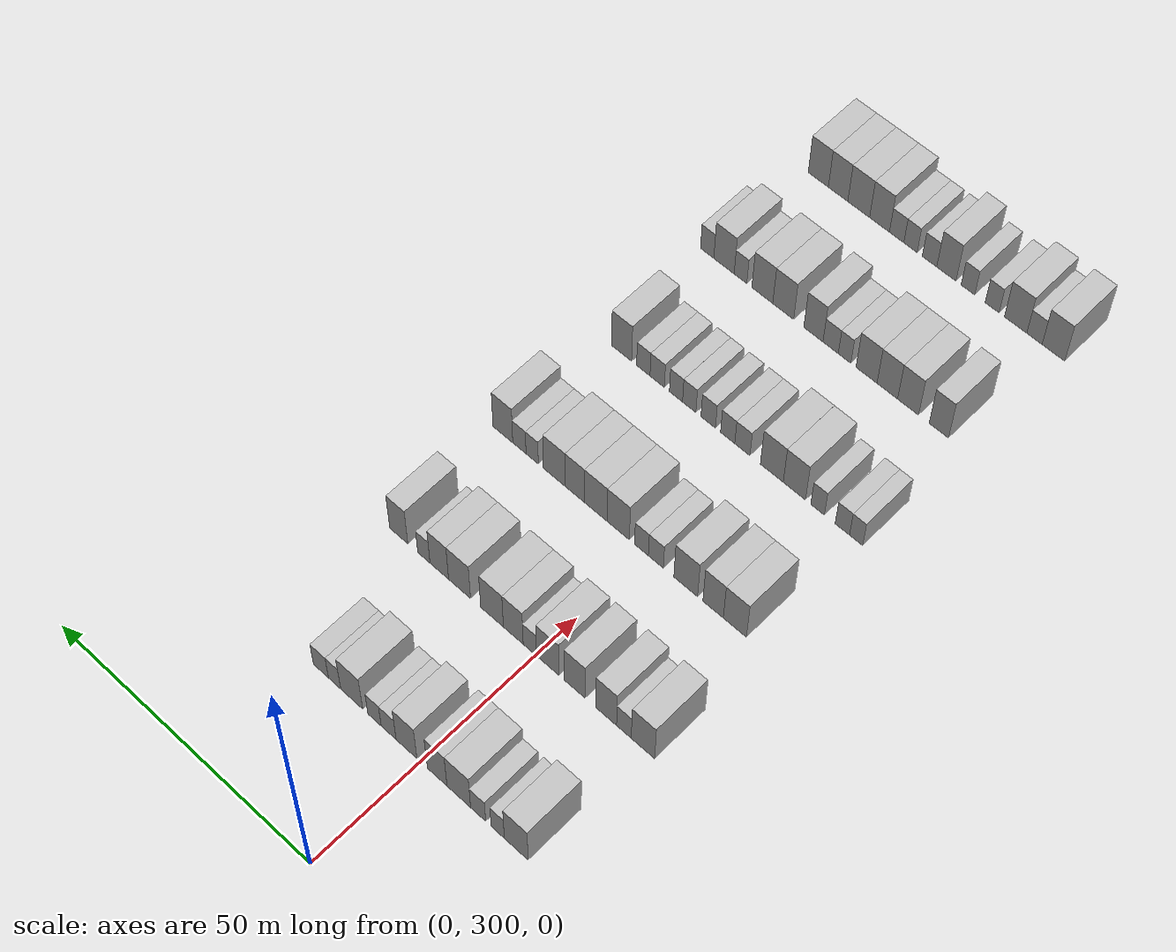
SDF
<sdf version="1.6">
 <world name="default">
  <model name="building_175">
   <static>1</static>
   <pose>25.0000 282.0824 0 0.000000 0.000000 0.000000</pose>
   <link name="link">
    <pose>0 0 4.50 0 0 0</pose>
    <collision name="collision"><geometry><box><size>10.0000 4.3826 9.0000</size></box></geometry></collision>
    <visual name="visual">
     <cast_shadows>0</cast_shadows>
     <geometry><box><size>10.0000 4.3826 9.0000</size></box></geometry>
     <material>
      <script>
       <uri>model://HANNAS_wall/materials/scripts</uri>
       <uri>model://HANNAS_wall/materials/textures</uri>
       <name>vrc/HANNAS_wall</name>
      </script>
     </material>
    </visual>
   </link>
  </model>
  <model name="building_176">
   <static>1</static>
   <pose>25.0000 285.5023 0 0.000000 0.000000 0.000000</pose>
   <link name="link">
    <pose>0 0 3.00 0 0 0</pose>
    <collision name="collision"><geometry><box><size>10.0000 2.4571 6.0000</size></box></geometry></collision>
    <visual name="visual">
     <cast_shadows>0</cast_shadows>
     <geometry><box><size>10.0000 2.4571 6.0000</size></box></geometry>
     <material>
      <script>
       <uri>model://HANNAS_wall/materials/scripts</uri>
       <uri>model://HANNAS_wall/materials/textures</uri>
       <name>vrc/HANNAS_wall</name>
      </script>
     </material>
    </visual>
   </link>
  </model>
  <model name="building_177">
   <static>1</static>
   <pose>25.0000 289.1351 0 0.000000 0.000000 0.000000</pose>
   <link name="link">
    <pose>0 0 3.00 0 0 0</pose>
    <collision name="collision"><geometry><box><size>10.0000 2.8085 6.0000</size></box></geometry></collision>
    <visual name="visual">
     <cast_shadows>0</cast_shadows>
     <geometry><box><size>10.0000 2.8085 6.0000</size></box></geometry>
     <material>
      <script>
       <uri>model://HANNAS_wall/materials/scripts</uri>
       <uri>model://HANNAS_wall/materials/textures</uri>
       <name>vrc/HANNAS_wall</name>
      </script>
     </material>
    </visual>
   </link>
  </model>
  <model name="building_178">
   <static>1</static>
   <pose>25.0000 292.7621 0 0.000000 0.000000 0.000000</pose>
   <link name="link">
    <pose>0 0 4.50 0 0 0</pose>
    <collision name="collision"><geometry><box><size>10.0000 4.4456 9.0000</size></box></geometry></collision>
    <visual name="visual">
     <cast_shadows>0</cast_shadows>
     <geometry><box><size>10.0000 4.4456 9.0000</size></box></geometry>
     <material>
      <script>
       <uri>model://HANNAS_wall/materials/scripts</uri>
       <uri>model://HANNAS_wall/materials/textures</uri>
       <name>vrc/HANNAS_wall</name>
      </script>
     </material>
    </visual>
   </link>
  </model>
  <model name="building_179">
   <static>1</static>
   <pose>25.0000 296.8432 0 0.000000 0.000000 0.000000</pose>
   <link name="link">
    <pose>0 0 4.50 0 0 0</pose>
    <collision name="collision"><geometry><box><size>10.0000 3.7166 9.0000</size></box></geometry></collision>
    <visual name="visual">
     <cast_shadows>0</cast_shadows>
     <geometry><box><size>10.0000 3.7166 9.0000</size></box></geometry>
     <material>
      <script>
       <uri>model://HANNAS_wall/materials/scripts</uri>
       <uri>model://HANNAS_wall/materials/textures</uri>
       <name>vrc/HANNAS_wall</name>
      </script>
     </material>
    </visual>
   </link>
  </model>
  <model name="building_180">
   <static>1</static>
   <pose>25.0000 302.7048 0 0.000000 0.000000 0.000000</pose>
   <link name="link">
    <pose>0 0 4.50 0 0 0</pose>
    <collision name="collision"><geometry><box><size>10.0000 4.0065 9.0000</size></box></geometry></collision>
    <visual name="visual">
     <cast_shadows>0</cast_shadows>
     <geometry><box><size>10.0000 4.0065 9.0000</size></box></geometry>
     <material>
      <script>
       <uri>model://HANNAS_wall/materials/scripts</uri>
       <uri>model://HANNAS_wall/materials/textures</uri>
       <name>vrc/HANNAS_wall</name>
      </script>
     </material>
    </visual>
   </link>
  </model>
  <model name="building_181">
   <static>1</static>
   <pose>25.0000 306.1415 0 0.000000 0.000000 0.000000</pose>
   <link name="link">
    <pose>0 0 3.00 0 0 0</pose>
    <collision name="collision"><geometry><box><size>10.0000 2.8670 6.0000</size></box></geometry></collision>
    <visual name="visual">
     <cast_shadows>0</cast_shadows>
     <geometry><box><size>10.0000 2.8670 6.0000</size></box></geometry>
     <material>
      <script>
       <uri>model://HANNAS_wall/materials/scripts</uri>
       <uri>model://HANNAS_wall/materials/textures</uri>
       <name>vrc/HANNAS_wall</name>
      </script>
     </material>
    </visual>
   </link>
  </model>
  <model name="building_182">
   <static>1</static>
   <pose>25.0000 308.8755 0 0.000000 0.000000 0.000000</pose>
   <link name="link">
    <pose>0 0 3.00 0 0 0</pose>
    <collision name="collision"><geometry><box><size>10.0000 2.6011 6.0000</size></box></geometry></collision>
    <visual name="visual">
     <cast_shadows>0</cast_shadows>
     <geometry><box><size>10.0000 2.6011 6.0000</size></box></geometry>
     <material>
      <script>
       <uri>model://HANNAS_wall/materials/scripts</uri>
       <uri>model://HANNAS_wall/materials/textures</uri>
       <name>vrc/HANNAS_wall</name>
      </script>
     </material>
    </visual>
   </link>
  </model>
  <model name="building_183">
   <static>1</static>
   <pose>25.0000 313.3384 0 0.000000 0.000000 0.000000</pose>
   <link name="link">
    <pose>0 0 4.50 0 0 0</pose>
    <collision name="collision"><geometry><box><size>10.0000 4.3247 9.0000</size></box></geometry></collision>
    <visual name="visual">
     <cast_shadows>0</cast_shadows>
     <geometry><box><size>10.0000 4.3247 9.0000</size></box></geometry>
     <material>
      <script>
       <uri>model://HANNAS_wall/materials/scripts</uri>
       <uri>model://HANNAS_wall/materials/textures</uri>
       <name>vrc/HANNAS_wall</name>
      </script>
     </material>
    </visual>
   </link>
  </model>
  <model name="building_184">
   <static>1</static>
   <pose>25.0000 316.7145 0 0.000000 0.000000 0.000000</pose>
   <link name="link">
    <pose>0 0 3.00 0 0 0</pose>
    <collision name="collision"><geometry><box><size>10.0000 2.4275 6.0000</size></box></geometry></collision>
    <visual name="visual">
     <cast_shadows>0</cast_shadows>
     <geometry><box><size>10.0000 2.4275 6.0000</size></box></geometry>
     <material>
      <script>
       <uri>model://HANNAS_wall/materials/scripts</uri>
       <uri>model://HANNAS_wall/materials/textures</uri>
       <name>vrc/HANNAS_wall</name>
      </script>
     </material>
    </visual>
   </link>
  </model>
  <model name="building_185">
   <static>1</static>
   <pose>25.0000 319.4148 0 0.000000 0.000000 0.000000</pose>
   <link name="link">
    <pose>0 0 3.00 0 0 0</pose>
    <collision name="collision"><geometry><box><size>10.0000 2.9731 6.0000</size></box></geometry></collision>
    <visual name="visual">
     <cast_shadows>0</cast_shadows>
     <geometry><box><size>10.0000 2.9731 6.0000</size></box></geometry>
     <material>
      <script>
       <uri>model://HANNAS_wall/materials/scripts</uri>
       <uri>model://HANNAS_wall/materials/textures</uri>
       <name>vrc/HANNAS_wall</name>
      </script>
     </material>
    </visual>
   </link>
  </model>
  <model name="building_370">
   <static>1</static>
   <pose>47.0000 280.0027 0 0.000000 0.000000 0.000000</pose>
   <link name="link">
    <pose>0 0 4.50 0 0 0</pose>
    <collision name="collision"><geometry><box><size>10.0000 4.3043 9.0000</size></box></geometry></collision>
    <visual name="visual">
     <cast_shadows>0</cast_shadows>
     <geometry><box><size>10.0000 4.3043 9.0000</size></box></geometry>
     <material>
      <script>
       <uri>model://HANNAS_wall/materials/scripts</uri>
       <uri>model://HANNAS_wall/materials/textures</uri>
       <name>vrc/HANNAS_wall</name>
      </script>
     </material>
    </visual>
   </link>
  </model>
  <model name="building_371">
   <static>1</static>
   <pose>47.0000 283.5054 0 0.000000 0.000000 0.000000</pose>
   <link name="link">
    <pose>0 0 3.00 0 0 0</pose>
    <collision name="collision"><geometry><box><size>10.0000 2.7009 6.0000</size></box></geometry></collision>
    <visual name="visual">
     <cast_shadows>0</cast_shadows>
     <geometry><box><size>10.0000 2.7009 6.0000</size></box></geometry>
     <material>
      <script>
       <uri>model://HANNAS_wall/materials/scripts</uri>
       <uri>model://HANNAS_wall/materials/textures</uri>
       <name>vrc/HANNAS_wall</name>
      </script>
     </material>
    </visual>
   </link>
  </model>
  <model name="building_372">
   <static>1</static>
   <pose>47.0000 286.7850 0 0.000000 0.000000 0.000000</pose>
   <link name="link">
    <pose>0 0 4.50 0 0 0</pose>
    <collision name="collision"><geometry><box><size>10.0000 3.8583 9.0000</size></box></geometry></collision>
    <visual name="visual">
     <cast_shadows>0</cast_shadows>
     <geometry><box><size>10.0000 3.8583 9.0000</size></box></geometry>
     <material>
      <script>
       <uri>model://HANNAS_wall/materials/scripts</uri>
       <uri>model://HANNAS_wall/materials/textures</uri>
       <name>vrc/HANNAS_wall</name>
      </script>
     </material>
    </visual>
   </link>
  </model>
  <model name="building_373">
   <static>1</static>
   <pose>47.0000 292.6842 0 0.000000 0.000000 0.000000</pose>
   <link name="link">
    <pose>0 0 4.50 0 0 0</pose>
    <collision name="collision"><geometry><box><size>10.0000 3.9401 9.0000</size></box></geometry></collision>
    <visual name="visual">
     <cast_shadows>0</cast_shadows>
     <geometry><box><size>10.0000 3.9401 9.0000</size></box></geometry>
     <material>
      <script>
       <uri>model://HANNAS_wall/materials/scripts</uri>
       <uri>model://HANNAS_wall/materials/textures</uri>
       <name>vrc/HANNAS_wall</name>
      </script>
     </material>
    </visual>
   </link>
  </model>
  <model name="building_374">
   <static>1</static>
   <pose>47.0000 297.7859 0 0.000000 0.000000 0.000000</pose>
   <link name="link">
    <pose>0 0 4.50 0 0 0</pose>
    <collision name="collision"><geometry><box><size>10.0000 4.2632 9.0000</size></box></geometry></collision>
    <visual name="visual">
     <cast_shadows>0</cast_shadows>
     <geometry><box><size>10.0000 4.2632 9.0000</size></box></geometry>
     <material>
      <script>
       <uri>model://HANNAS_wall/materials/scripts</uri>
       <uri>model://HANNAS_wall/materials/textures</uri>
       <name>vrc/HANNAS_wall</name>
      </script>
     </material>
    </visual>
   </link>
  </model>
  <model name="building_375">
   <static>1</static>
   <pose>47.0000 301.1965 0 0.000000 0.000000 0.000000</pose>
   <link name="link">
    <pose>0 0 3.00 0 0 0</pose>
    <collision name="collision"><geometry><box><size>10.0000 2.5579 6.0000</size></box></geometry></collision>
    <visual name="visual">
     <cast_shadows>0</cast_shadows>
     <geometry><box><size>10.0000 2.5579 6.0000</size></box></geometry>
     <material>
      <script>
       <uri>model://HANNAS_wall/materials/scripts</uri>
       <uri>model://HANNAS_wall/materials/textures</uri>
       <name>vrc/HANNAS_wall</name>
      </script>
     </material>
    </visual>
   </link>
  </model>
  <model name="building_376">
   <static>1</static>
   <pose>47.0000 304.3862 0 0.000000 0.000000 0.000000</pose>
   <link name="link">
    <pose>0 0 4.50 0 0 0</pose>
    <collision name="collision"><geometry><box><size>10.0000 3.8214 9.0000</size></box></geometry></collision>
    <visual name="visual">
     <cast_shadows>0</cast_shadows>
     <geometry><box><size>10.0000 3.8214 9.0000</size></box></geometry>
     <material>
      <script>
       <uri>model://HANNAS_wall/materials/scripts</uri>
       <uri>model://HANNAS_wall/materials/textures</uri>
       <name>vrc/HANNAS_wall</name>
      </script>
     </material>
    </visual>
   </link>
  </model>
  <model name="building_377">
   <static>1</static>
   <pose>47.0000 308.5002 0 0.000000 0.000000 0.000000</pose>
   <link name="link">
    <pose>0 0 4.50 0 0 0</pose>
    <collision name="collision"><geometry><box><size>10.0000 4.4066 9.0000</size></box></geometry></collision>
    <visual name="visual">
     <cast_shadows>0</cast_shadows>
     <geometry><box><size>10.0000 4.4066 9.0000</size></box></geometry>
     <material>
      <script>
       <uri>model://HANNAS_wall/materials/scripts</uri>
       <uri>model://HANNAS_wall/materials/textures</uri>
       <name>vrc/HANNAS_wall</name>
      </script>
     </material>
    </visual>
   </link>
  </model>
  <model name="building_378">
   <static>1</static>
   <pose>47.0000 314.8669 0 0.000000 0.000000 0.000000</pose>
   <link name="link">
    <pose>0 0 4.50 0 0 0</pose>
    <collision name="collision"><geometry><box><size>10.0000 4.3269 9.0000</size></box></geometry></collision>
    <visual name="visual">
     <cast_shadows>0</cast_shadows>
     <geometry><box><size>10.0000 4.3269 9.0000</size></box></geometry>
     <material>
      <script>
       <uri>model://HANNAS_wall/materials/scripts</uri>
       <uri>model://HANNAS_wall/materials/textures</uri>
       <name>vrc/HANNAS_wall</name>
      </script>
     </material>
    </visual>
   </link>
  </model>
  <model name="building_379">
   <static>1</static>
   <pose>47.0000 318.8707 0 0.000000 0.000000 0.000000</pose>
   <link name="link">
    <pose>0 0 4.50 0 0 0</pose>
    <collision name="collision"><geometry><box><size>10.0000 3.6808 9.0000</size></box></geometry></collision>
    <visual name="visual">
     <cast_shadows>0</cast_shadows>
     <geometry><box><size>10.0000 3.6808 9.0000</size></box></geometry>
     <material>
      <script>
       <uri>model://HANNAS_wall/materials/scripts</uri>
       <uri>model://HANNAS_wall/materials/textures</uri>
       <name>vrc/HANNAS_wall</name>
      </script>
     </material>
    </visual>
   </link>
  </model>
  <model name="building_380">
   <static>1</static>
   <pose>47.0000 321.9353 0 0.000000 0.000000 0.000000</pose>
   <link name="link">
    <pose>0 0 3.00 0 0 0</pose>
    <collision name="collision"><geometry><box><size>10.0000 2.4484 6.0000</size></box></geometry></collision>
    <visual name="visual">
     <cast_shadows>0</cast_shadows>
     <geometry><box><size>10.0000 2.4484 6.0000</size></box></geometry>
     <material>
      <script>
       <uri>model://HANNAS_wall/materials/scripts</uri>
       <uri>model://HANNAS_wall/materials/textures</uri>
       <name>vrc/HANNAS_wall</name>
      </script>
     </material>
    </visual>
   </link>
  </model>
  <model name="building_381">
   <static>1</static>
   <pose>47.0000 326.9849 0 0.000000 0.000000 0.000000</pose>
   <link name="link">
    <pose>0 0 4.50 0 0 0</pose>
    <collision name="collision"><geometry><box><size>10.0000 3.6507 9.0000</size></box></geometry></collision>
    <visual name="visual">
     <cast_shadows>0</cast_shadows>
     <geometry><box><size>10.0000 3.6507 9.0000</size></box></geometry>
     <material>
      <script>
       <uri>model://HANNAS_wall/materials/scripts</uri>
       <uri>model://HANNAS_wall/materials/textures</uri>
       <name>vrc/HANNAS_wall</name>
      </script>
     </material>
    </visual>
   </link>
  </model>
  <model name="building_557">
   <static>1</static>
   <pose>69.0000 283.3206 0 0.000000 0.000000 0.000000</pose>
   <link name="link">
    <pose>0 0 4.50 0 0 0</pose>
    <collision name="collision"><geometry><box><size>10.0000 4.2843 9.0000</size></box></geometry></collision>
    <visual name="visual">
     <cast_shadows>0</cast_shadows>
     <geometry><box><size>10.0000 4.2843 9.0000</size></box></geometry>
     <material>
      <script>
       <uri>model://HANNAS_wall/materials/scripts</uri>
       <uri>model://HANNAS_wall/materials/textures</uri>
       <name>vrc/HANNAS_wall</name>
      </script>
     </material>
    </visual>
   </link>
  </model>
  <model name="building_558">
   <static>1</static>
   <pose>69.0000 287.3649 0 0.000000 0.000000 0.000000</pose>
   <link name="link">
    <pose>0 0 4.50 0 0 0</pose>
    <collision name="collision"><geometry><box><size>10.0000 3.8043 9.0000</size></box></geometry></collision>
    <visual name="visual">
     <cast_shadows>0</cast_shadows>
     <geometry><box><size>10.0000 3.8043 9.0000</size></box></geometry>
     <material>
      <script>
       <uri>model://HANNAS_wall/materials/scripts</uri>
       <uri>model://HANNAS_wall/materials/textures</uri>
       <name>vrc/HANNAS_wall</name>
      </script>
     </material>
    </visual>
   </link>
  </model>
  <model name="building_559">
   <static>1</static>
   <pose>69.0000 292.5030 0 0.000000 0.000000 0.000000</pose>
   <link name="link">
    <pose>0 0 4.50 0 0 0</pose>
    <collision name="collision"><geometry><box><size>10.0000 4.4719 9.0000</size></box></geometry></collision>
    <visual name="visual">
     <cast_shadows>0</cast_shadows>
     <geometry><box><size>10.0000 4.4719 9.0000</size></box></geometry>
     <material>
      <script>
       <uri>model://HANNAS_wall/materials/scripts</uri>
       <uri>model://HANNAS_wall/materials/textures</uri>
       <name>vrc/HANNAS_wall</name>
      </script>
     </material>
    </visual>
   </link>
  </model>
  <model name="building_560">
   <static>1</static>
   <pose>69.0000 298.1664 0 0.000000 0.000000 0.000000</pose>
   <link name="link">
    <pose>0 0 3.00 0 0 0</pose>
    <collision name="collision"><geometry><box><size>10.0000 2.8551 6.0000</size></box></geometry></collision>
    <visual name="visual">
     <cast_shadows>0</cast_shadows>
     <geometry><box><size>10.0000 2.8551 6.0000</size></box></geometry>
     <material>
      <script>
       <uri>model://HANNAS_wall/materials/scripts</uri>
       <uri>model://HANNAS_wall/materials/textures</uri>
       <name>vrc/HANNAS_wall</name>
      </script>
     </material>
    </visual>
   </link>
  </model>
  <model name="building_561">
   <static>1</static>
   <pose>69.0000 300.9209 0 0.000000 0.000000 0.000000</pose>
   <link name="link">
    <pose>0 0 3.00 0 0 0</pose>
    <collision name="collision"><geometry><box><size>10.0000 2.6539 6.0000</size></box></geometry></collision>
    <visual name="visual">
     <cast_shadows>0</cast_shadows>
     <geometry><box><size>10.0000 2.6539 6.0000</size></box></geometry>
     <material>
      <script>
       <uri>model://HANNAS_wall/materials/scripts</uri>
       <uri>model://HANNAS_wall/materials/textures</uri>
       <name>vrc/HANNAS_wall</name>
      </script>
     </material>
    </visual>
   </link>
  </model>
  <model name="building_562">
   <static>1</static>
   <pose>69.0000 305.4071 0 0.000000 0.000000 0.000000</pose>
   <link name="link">
    <pose>0 0 4.50 0 0 0</pose>
    <collision name="collision"><geometry><box><size>10.0000 4.3184 9.0000</size></box></geometry></collision>
    <visual name="visual">
     <cast_shadows>0</cast_shadows>
     <geometry><box><size>10.0000 4.3184 9.0000</size></box></geometry>
     <material>
      <script>
       <uri>model://HANNAS_wall/materials/scripts</uri>
       <uri>model://HANNAS_wall/materials/textures</uri>
       <name>vrc/HANNAS_wall</name>
      </script>
     </material>
    </visual>
   </link>
  </model>
  <model name="building_563">
   <static>1</static>
   <pose>69.0000 309.7880 0 0.000000 0.000000 0.000000</pose>
   <link name="link">
    <pose>0 0 4.50 0 0 0</pose>
    <collision name="collision"><geometry><box><size>10.0000 4.4434 9.0000</size></box></geometry></collision>
    <visual name="visual">
     <cast_shadows>0</cast_shadows>
     <geometry><box><size>10.0000 4.4434 9.0000</size></box></geometry>
     <material>
      <script>
       <uri>model://HANNAS_wall/materials/scripts</uri>
       <uri>model://HANNAS_wall/materials/textures</uri>
       <name>vrc/HANNAS_wall</name>
      </script>
     </material>
    </visual>
   </link>
  </model>
  <model name="building_564">
   <static>1</static>
   <pose>69.0000 313.8903 0 0.000000 0.000000 0.000000</pose>
   <link name="link">
    <pose>0 0 4.50 0 0 0</pose>
    <collision name="collision"><geometry><box><size>10.0000 3.7614 9.0000</size></box></geometry></collision>
    <visual name="visual">
     <cast_shadows>0</cast_shadows>
     <geometry><box><size>10.0000 3.7614 9.0000</size></box></geometry>
     <material>
      <script>
       <uri>model://HANNAS_wall/materials/scripts</uri>
       <uri>model://HANNAS_wall/materials/textures</uri>
       <name>vrc/HANNAS_wall</name>
      </script>
     </material>
    </visual>
   </link>
  </model>
  <model name="building_565">
   <static>1</static>
   <pose>69.0000 317.9422 0 0.000000 0.000000 0.000000</pose>
   <link name="link">
    <pose>0 0 4.50 0 0 0</pose>
    <collision name="collision"><geometry><box><size>10.0000 4.3424 9.0000</size></box></geometry></collision>
    <visual name="visual">
     <cast_shadows>0</cast_shadows>
     <geometry><box><size>10.0000 4.3424 9.0000</size></box></geometry>
     <material>
      <script>
       <uri>model://HANNAS_wall/materials/scripts</uri>
       <uri>model://HANNAS_wall/materials/textures</uri>
       <name>vrc/HANNAS_wall</name>
      </script>
     </material>
    </visual>
   </link>
  </model>
  <model name="building_566">
   <static>1</static>
   <pose>69.0000 322.3436 0 0.000000 0.000000 0.000000</pose>
   <link name="link">
    <pose>0 0 3.00 0 0 0</pose>
    <collision name="collision"><geometry><box><size>10.0000 2.4602 6.0000</size></box></geometry></collision>
    <visual name="visual">
     <cast_shadows>0</cast_shadows>
     <geometry><box><size>10.0000 2.4602 6.0000</size></box></geometry>
     <material>
      <script>
       <uri>model://HANNAS_wall/materials/scripts</uri>
       <uri>model://HANNAS_wall/materials/textures</uri>
       <name>vrc/HANNAS_wall</name>
      </script>
     </material>
    </visual>
   </link>
  </model>
  <model name="building_567">
   <static>1</static>
   <pose>69.0000 324.9090 0 0.000000 0.000000 0.000000</pose>
   <link name="link">
    <pose>0 0 3.00 0 0 0</pose>
    <collision name="collision"><geometry><box><size>10.0000 2.6707 6.0000</size></box></geometry></collision>
    <visual name="visual">
     <cast_shadows>0</cast_shadows>
     <geometry><box><size>10.0000 2.6707 6.0000</size></box></geometry>
     <material>
      <script>
       <uri>model://HANNAS_wall/materials/scripts</uri>
       <uri>model://HANNAS_wall/materials/textures</uri>
       <name>vrc/HANNAS_wall</name>
      </script>
     </material>
    </visual>
   </link>
  </model>
  <model name="building_568">
   <static>1</static>
   <pose>69.0000 328.2450 0 0.000000 0.000000 0.000000</pose>
   <link name="link">
    <pose>0 0 4.50 0 0 0</pose>
    <collision name="collision"><geometry><box><size>10.0000 4.0013 9.0000</size></box></geometry></collision>
    <visual name="visual">
     <cast_shadows>0</cast_shadows>
     <geometry><box><size>10.0000 4.0013 9.0000</size></box></geometry>
     <material>
      <script>
       <uri>model://HANNAS_wall/materials/scripts</uri>
       <uri>model://HANNAS_wall/materials/textures</uri>
       <name>vrc/HANNAS_wall</name>
      </script>
     </material>
    </visual>
   </link>
  </model>
  <model name="building_758">
   <static>1</static>
   <pose>91.0000 280.2896 0 0.000000 0.000000 0.000000</pose>
   <link name="link">
    <pose>0 0 3.00 0 0 0</pose>
    <collision name="collision"><geometry><box><size>10.0000 2.4232 6.0000</size></box></geometry></collision>
    <visual name="visual">
     <cast_shadows>0</cast_shadows>
     <geometry><box><size>10.0000 2.4232 6.0000</size></box></geometry>
     <material>
      <script>
       <uri>model://HANNAS_wall/materials/scripts</uri>
       <uri>model://HANNAS_wall/materials/textures</uri>
       <name>vrc/HANNAS_wall</name>
      </script>
     </material>
    </visual>
   </link>
  </model>
  <model name="building_759">
   <static>1</static>
   <pose>91.0000 282.8338 0 0.000000 0.000000 0.000000</pose>
   <link name="link">
    <pose>0 0 3.00 0 0 0</pose>
    <collision name="collision"><geometry><box><size>10.0000 2.6654 6.0000</size></box></geometry></collision>
    <visual name="visual">
     <cast_shadows>0</cast_shadows>
     <geometry><box><size>10.0000 2.6654 6.0000</size></box></geometry>
     <material>
      <script>
       <uri>model://HANNAS_wall/materials/scripts</uri>
       <uri>model://HANNAS_wall/materials/textures</uri>
       <name>vrc/HANNAS_wall</name>
      </script>
     </material>
    </visual>
   </link>
  </model>
  <model name="building_760">
   <static>1</static>
   <pose>91.0000 287.4464 0 0.000000 0.000000 0.000000</pose>
   <link name="link">
    <pose>0 0 3.00 0 0 0</pose>
    <collision name="collision"><geometry><box><size>10.0000 2.5597 6.0000</size></box></geometry></collision>
    <visual name="visual">
     <cast_shadows>0</cast_shadows>
     <geometry><box><size>10.0000 2.5597 6.0000</size></box></geometry>
     <material>
      <script>
       <uri>model://HANNAS_wall/materials/scripts</uri>
       <uri>model://HANNAS_wall/materials/textures</uri>
       <name>vrc/HANNAS_wall</name>
      </script>
     </material>
    </visual>
   </link>
  </model>
  <model name="building_761">
   <static>1</static>
   <pose>91.0000 291.8269 0 0.000000 0.000000 0.000000</pose>
   <link name="link">
    <pose>0 0 4.50 0 0 0</pose>
    <collision name="collision"><geometry><box><size>10.0000 4.2015 9.0000</size></box></geometry></collision>
    <visual name="visual">
     <cast_shadows>0</cast_shadows>
     <geometry><box><size>10.0000 4.2015 9.0000</size></box></geometry>
     <material>
      <script>
       <uri>model://HANNAS_wall/materials/scripts</uri>
       <uri>model://HANNAS_wall/materials/textures</uri>
       <name>vrc/HANNAS_wall</name>
      </script>
     </material>
    </visual>
   </link>
  </model>
  <model name="building_762">
   <static>1</static>
   <pose>91.0000 296.1049 0 0.000000 0.000000 0.000000</pose>
   <link name="link">
    <pose>0 0 4.50 0 0 0</pose>
    <collision name="collision"><geometry><box><size>10.0000 4.3544 9.0000</size></box></geometry></collision>
    <visual name="visual">
     <cast_shadows>0</cast_shadows>
     <geometry><box><size>10.0000 4.3544 9.0000</size></box></geometry>
     <material>
      <script>
       <uri>model://HANNAS_wall/materials/scripts</uri>
       <uri>model://HANNAS_wall/materials/textures</uri>
       <name>vrc/HANNAS_wall</name>
      </script>
     </material>
    </visual>
   </link>
  </model>
  <model name="building_763">
   <static>1</static>
   <pose>91.0000 301.7464 0 0.000000 0.000000 0.000000</pose>
   <link name="link">
    <pose>0 0 3.00 0 0 0</pose>
    <collision name="collision"><geometry><box><size>10.0000 2.9286 6.0000</size></box></geometry></collision>
    <visual name="visual">
     <cast_shadows>0</cast_shadows>
     <geometry><box><size>10.0000 2.9286 6.0000</size></box></geometry>
     <material>
      <script>
       <uri>model://HANNAS_wall/materials/scripts</uri>
       <uri>model://HANNAS_wall/materials/textures</uri>
       <name>vrc/HANNAS_wall</name>
      </script>
     </material>
    </visual>
   </link>
  </model>
  <model name="building_764">
   <static>1</static>
   <pose>91.0000 304.5852 0 0.000000 0.000000 0.000000</pose>
   <link name="link">
    <pose>0 0 3.00 0 0 0</pose>
    <collision name="collision"><geometry><box><size>10.0000 2.7492 6.0000</size></box></geometry></collision>
    <visual name="visual">
     <cast_shadows>0</cast_shadows>
     <geometry><box><size>10.0000 2.7492 6.0000</size></box></geometry>
     <material>
      <script>
       <uri>model://HANNAS_wall/materials/scripts</uri>
       <uri>model://HANNAS_wall/materials/textures</uri>
       <name>vrc/HANNAS_wall</name>
      </script>
     </material>
    </visual>
   </link>
  </model>
  <model name="building_765">
   <static>1</static>
   <pose>91.0000 308.3703 0 0.000000 0.000000 0.000000</pose>
   <link name="link">
    <pose>0 0 3.00 0 0 0</pose>
    <collision name="collision"><geometry><box><size>10.0000 2.8209 6.0000</size></box></geometry></collision>
    <visual name="visual">
     <cast_shadows>0</cast_shadows>
     <geometry><box><size>10.0000 2.8209 6.0000</size></box></geometry>
     <material>
      <script>
       <uri>model://HANNAS_wall/materials/scripts</uri>
       <uri>model://HANNAS_wall/materials/textures</uri>
       <name>vrc/HANNAS_wall</name>
      </script>
     </material>
    </visual>
   </link>
  </model>
  <model name="building_766">
   <static>1</static>
   <pose>91.0000 312.0960 0 0.000000 0.000000 0.000000</pose>
   <link name="link">
    <pose>0 0 3.00 0 0 0</pose>
    <collision name="collision"><geometry><box><size>10.0000 2.6307 6.0000</size></box></geometry></collision>
    <visual name="visual">
     <cast_shadows>0</cast_shadows>
     <geometry><box><size>10.0000 2.6307 6.0000</size></box></geometry>
     <material>
      <script>
       <uri>model://HANNAS_wall/materials/scripts</uri>
       <uri>model://HANNAS_wall/materials/textures</uri>
       <name>vrc/HANNAS_wall</name>
      </script>
     </material>
    </visual>
   </link>
  </model>
  <model name="building_767">
   <static>1</static>
   <pose>91.0000 314.7061 0 0.000000 0.000000 0.000000</pose>
   <link name="link">
    <pose>0 0 3.00 0 0 0</pose>
    <collision name="collision"><geometry><box><size>10.0000 2.5894 6.0000</size></box></geometry></collision>
    <visual name="visual">
     <cast_shadows>0</cast_shadows>
     <geometry><box><size>10.0000 2.5894 6.0000</size></box></geometry>
     <material>
      <script>
       <uri>model://HANNAS_wall/materials/scripts</uri>
       <uri>model://HANNAS_wall/materials/textures</uri>
       <name>vrc/HANNAS_wall</name>
      </script>
     </material>
    </visual>
   </link>
  </model>
  <model name="building_768">
   <static>1</static>
   <pose>91.0000 318.4316 0 0.000000 0.000000 0.000000</pose>
   <link name="link">
    <pose>0 0 3.00 0 0 0</pose>
    <collision name="collision"><geometry><box><size>10.0000 2.8617 6.0000</size></box></geometry></collision>
    <visual name="visual">
     <cast_shadows>0</cast_shadows>
     <geometry><box><size>10.0000 2.8617 6.0000</size></box></geometry>
     <material>
      <script>
       <uri>model://HANNAS_wall/materials/scripts</uri>
       <uri>model://HANNAS_wall/materials/textures</uri>
       <name>vrc/HANNAS_wall</name>
      </script>
     </material>
    </visual>
   </link>
  </model>
  <model name="building_769">
   <static>1</static>
   <pose>91.0000 321.2061 0 0.000000 0.000000 0.000000</pose>
   <link name="link">
    <pose>0 0 3.00 0 0 0</pose>
    <collision name="collision"><geometry><box><size>10.0000 2.6872 6.0000</size></box></geometry></collision>
    <visual name="visual">
     <cast_shadows>0</cast_shadows>
     <geometry><box><size>10.0000 2.6872 6.0000</size></box></geometry>
     <material>
      <script>
       <uri>model://HANNAS_wall/materials/scripts</uri>
       <uri>model://HANNAS_wall/materials/textures</uri>
       <name>vrc/HANNAS_wall</name>
      </script>
     </material>
    </visual>
   </link>
  </model>
  <model name="building_770">
   <static>1</static>
   <pose>91.0000 325.5667 0 0.000000 0.000000 0.000000</pose>
   <link name="link">
    <pose>0 0 4.50 0 0 0</pose>
    <collision name="collision"><geometry><box><size>10.0000 4.0340 9.0000</size></box></geometry></collision>
    <visual name="visual">
     <cast_shadows>0</cast_shadows>
     <geometry><box><size>10.0000 4.0340 9.0000</size></box></geometry>
     <material>
      <script>
       <uri>model://HANNAS_wall/materials/scripts</uri>
       <uri>model://HANNAS_wall/materials/textures</uri>
       <name>vrc/HANNAS_wall</name>
      </script>
     </material>
    </visual>
   </link>
  </model>
  <model name="building_959">
   <static>1</static>
   <pose>113.0000 283.5131 0 0.000000 0.000000 0.000000</pose>
   <link name="link">
    <pose>0 0 4.50 0 0 0</pose>
    <collision name="collision"><geometry><box><size>10.0000 3.6060 9.0000</size></box></geometry></collision>
    <visual name="visual">
     <cast_shadows>0</cast_shadows>
     <geometry><box><size>10.0000 3.6060 9.0000</size></box></geometry>
     <material>
      <script>
       <uri>model://HANNAS_wall/materials/scripts</uri>
       <uri>model://HANNAS_wall/materials/textures</uri>
       <name>vrc/HANNAS_wall</name>
      </script>
     </material>
    </visual>
   </link>
  </model>
  <model name="building_960">
   <static>1</static>
   <pose>113.0000 289.2903 0 0.000000 0.000000 0.000000</pose>
   <link name="link">
    <pose>0 0 4.50 0 0 0</pose>
    <collision name="collision"><geometry><box><size>10.0000 3.9486 9.0000</size></box></geometry></collision>
    <visual name="visual">
     <cast_shadows>0</cast_shadows>
     <geometry><box><size>10.0000 3.9486 9.0000</size></box></geometry>
     <material>
      <script>
       <uri>model://HANNAS_wall/materials/scripts</uri>
       <uri>model://HANNAS_wall/materials/textures</uri>
       <name>vrc/HANNAS_wall</name>
      </script>
     </material>
    </visual>
   </link>
  </model>
  <model name="building_961">
   <static>1</static>
   <pose>113.0000 293.2299 0 0.000000 0.000000 0.000000</pose>
   <link name="link">
    <pose>0 0 4.50 0 0 0</pose>
    <collision name="collision"><geometry><box><size>10.0000 3.9306 9.0000</size></box></geometry></collision>
    <visual name="visual">
     <cast_shadows>0</cast_shadows>
     <geometry><box><size>10.0000 3.9306 9.0000</size></box></geometry>
     <material>
      <script>
       <uri>model://HANNAS_wall/materials/scripts</uri>
       <uri>model://HANNAS_wall/materials/textures</uri>
       <name>vrc/HANNAS_wall</name>
      </script>
     </material>
    </visual>
   </link>
  </model>
  <model name="building_962">
   <static>1</static>
   <pose>113.0000 297.2070 0 0.000000 0.000000 0.000000</pose>
   <link name="link">
    <pose>0 0 4.50 0 0 0</pose>
    <collision name="collision"><geometry><box><size>10.0000 4.0236 9.0000</size></box></geometry></collision>
    <visual name="visual">
     <cast_shadows>0</cast_shadows>
     <geometry><box><size>10.0000 4.0236 9.0000</size></box></geometry>
     <material>
      <script>
       <uri>model://HANNAS_wall/materials/scripts</uri>
       <uri>model://HANNAS_wall/materials/textures</uri>
       <name>vrc/HANNAS_wall</name>
      </script>
     </material>
    </visual>
   </link>
  </model>
  <model name="building_963">
   <static>1</static>
   <pose>113.0000 301.4288 0 0.000000 0.000000 0.000000</pose>
   <link name="link">
    <pose>0 0 3.00 0 0 0</pose>
    <collision name="collision"><geometry><box><size>10.0000 2.4200 6.0000</size></box></geometry></collision>
    <visual name="visual">
     <cast_shadows>0</cast_shadows>
     <geometry><box><size>10.0000 2.4200 6.0000</size></box></geometry>
     <material>
      <script>
       <uri>model://HANNAS_wall/materials/scripts</uri>
       <uri>model://HANNAS_wall/materials/textures</uri>
       <name>vrc/HANNAS_wall</name>
      </script>
     </material>
    </visual>
   </link>
  </model>
  <model name="building_964">
   <static>1</static>
   <pose>113.0000 304.1258 0 0.000000 0.000000 0.000000</pose>
   <link name="link">
    <pose>0 0 3.00 0 0 0</pose>
    <collision name="collision"><geometry><box><size>10.0000 2.9739 6.0000</size></box></geometry></collision>
    <visual name="visual">
     <cast_shadows>0</cast_shadows>
     <geometry><box><size>10.0000 2.9739 6.0000</size></box></geometry>
     <material>
      <script>
       <uri>model://HANNAS_wall/materials/scripts</uri>
       <uri>model://HANNAS_wall/materials/textures</uri>
       <name>vrc/HANNAS_wall</name>
      </script>
     </material>
    </visual>
   </link>
  </model>
  <model name="building_965">
   <static>1</static>
   <pose>113.0000 307.4861 0 0.000000 0.000000 0.000000</pose>
   <link name="link">
    <pose>0 0 4.50 0 0 0</pose>
    <collision name="collision"><geometry><box><size>10.0000 3.7467 9.0000</size></box></geometry></collision>
    <visual name="visual">
     <cast_shadows>0</cast_shadows>
     <geometry><box><size>10.0000 3.7467 9.0000</size></box></geometry>
     <material>
      <script>
       <uri>model://HANNAS_wall/materials/scripts</uri>
       <uri>model://HANNAS_wall/materials/textures</uri>
       <name>vrc/HANNAS_wall</name>
      </script>
     </material>
    </visual>
   </link>
  </model>
  <model name="building_966">
   <static>1</static>
   <pose>113.0000 313.4260 0 0.000000 0.000000 0.000000</pose>
   <link name="link">
    <pose>0 0 4.50 0 0 0</pose>
    <collision name="collision"><geometry><box><size>10.0000 4.1332 9.0000</size></box></geometry></collision>
    <visual name="visual">
     <cast_shadows>0</cast_shadows>
     <geometry><box><size>10.0000 4.1332 9.0000</size></box></geometry>
     <material>
      <script>
       <uri>model://HANNAS_wall/materials/scripts</uri>
       <uri>model://HANNAS_wall/materials/textures</uri>
       <name>vrc/HANNAS_wall</name>
      </script>
     </material>
    </visual>
   </link>
  </model>
  <model name="building_967">
   <static>1</static>
   <pose>113.0000 317.5772 0 0.000000 0.000000 0.000000</pose>
   <link name="link">
    <pose>0 0 4.50 0 0 0</pose>
    <collision name="collision"><geometry><box><size>10.0000 4.1692 9.0000</size></box></geometry></collision>
    <visual name="visual">
     <cast_shadows>0</cast_shadows>
     <geometry><box><size>10.0000 4.1692 9.0000</size></box></geometry>
     <material>
      <script>
       <uri>model://HANNAS_wall/materials/scripts</uri>
       <uri>model://HANNAS_wall/materials/textures</uri>
       <name>vrc/HANNAS_wall</name>
      </script>
     </material>
    </visual>
   </link>
  </model>
  <model name="building_968">
   <static>1</static>
   <pose>113.0000 321.9369 0 0.000000 0.000000 0.000000</pose>
   <link name="link">
    <pose>0 0 3.00 0 0 0</pose>
    <collision name="collision"><geometry><box><size>10.0000 2.5502 6.0000</size></box></geometry></collision>
    <visual name="visual">
     <cast_shadows>0</cast_shadows>
     <geometry><box><size>10.0000 2.5502 6.0000</size></box></geometry>
     <material>
      <script>
       <uri>model://HANNAS_wall/materials/scripts</uri>
       <uri>model://HANNAS_wall/materials/textures</uri>
       <name>vrc/HANNAS_wall</name>
      </script>
     </material>
    </visual>
   </link>
  </model>
  <model name="building_969">
   <static>1</static>
   <pose>113.0000 325.2706 0 0.000000 0.000000 0.000000</pose>
   <link name="link">
    <pose>0 0 4.50 0 0 0</pose>
    <collision name="collision"><geometry><box><size>10.0000 4.1172 9.0000</size></box></geometry></collision>
    <visual name="visual">
     <cast_shadows>0</cast_shadows>
     <geometry><box><size>10.0000 4.1172 9.0000</size></box></geometry>
     <material>
      <script>
       <uri>model://HANNAS_wall/materials/scripts</uri>
       <uri>model://HANNAS_wall/materials/textures</uri>
       <name>vrc/HANNAS_wall</name>
      </script>
     </material>
    </visual>
   </link>
  </model>
  <model name="building_970">
   <static>1</static>
   <pose>113.0000 328.6752 0 0.000000 0.000000 0.000000</pose>
   <link name="link">
    <pose>0 0 3.00 0 0 0</pose>
    <collision name="collision"><geometry><box><size>10.0000 2.6919 6.0000</size></box></geometry></collision>
    <visual name="visual">
     <cast_shadows>0</cast_shadows>
     <geometry><box><size>10.0000 2.6919 6.0000</size></box></geometry>
     <material>
      <script>
       <uri>model://HANNAS_wall/materials/scripts</uri>
       <uri>model://HANNAS_wall/materials/textures</uri>
       <name>vrc/HANNAS_wall</name>
      </script>
     </material>
    </visual>
   </link>
  </model>
  <model name="building_1149">
   <static>1</static>
   <pose>135.0000 280.0141 0 0.000000 0.000000 0.000000</pose>
   <link name="link">
    <pose>0 0 4.50 0 0 0</pose>
    <collision name="collision"><geometry><box><size>10.0000 4.2149 9.0000</size></box></geometry></collision>
    <visual name="visual">
     <cast_shadows>0</cast_shadows>
     <geometry><box><size>10.0000 4.2149 9.0000</size></box></geometry>
     <material>
      <script>
       <uri>model://HANNAS_wall/materials/scripts</uri>
       <uri>model://HANNAS_wall/materials/textures</uri>
       <name>vrc/HANNAS_wall</name>
      </script>
     </material>
    </visual>
   </link>
  </model>
  <model name="building_1150">
   <static>1</static>
   <pose>135.0000 283.5553 0 0.000000 0.000000 0.000000</pose>
   <link name="link">
    <pose>0 0 3.00 0 0 0</pose>
    <collision name="collision"><geometry><box><size>10.0000 2.8675 6.0000</size></box></geometry></collision>
    <visual name="visual">
     <cast_shadows>0</cast_shadows>
     <geometry><box><size>10.0000 2.8675 6.0000</size></box></geometry>
     <material>
      <script>
       <uri>model://HANNAS_wall/materials/scripts</uri>
       <uri>model://HANNAS_wall/materials/textures</uri>
       <name>vrc/HANNAS_wall</name>
      </script>
     </material>
    </visual>
   </link>
  </model>
  <model name="building_1151">
   <static>1</static>
   <pose>135.0000 287.1010 0 0.000000 0.000000 0.000000</pose>
   <link name="link">
    <pose>0 0 4.50 0 0 0</pose>
    <collision name="collision"><geometry><box><size>10.0000 4.2239 9.0000</size></box></geometry></collision>
    <visual name="visual">
     <cast_shadows>0</cast_shadows>
     <geometry><box><size>10.0000 4.2239 9.0000</size></box></geometry>
     <material>
      <script>
       <uri>model://HANNAS_wall/materials/scripts</uri>
       <uri>model://HANNAS_wall/materials/textures</uri>
       <name>vrc/HANNAS_wall</name>
      </script>
     </material>
    </visual>
   </link>
  </model>
  <model name="building_1152">
   <static>1</static>
   <pose>135.0000 291.5430 0 0.000000 0.000000 0.000000</pose>
   <link name="link">
    <pose>0 0 3.00 0 0 0</pose>
    <collision name="collision"><geometry><box><size>10.0000 2.6602 6.0000</size></box></geometry></collision>
    <visual name="visual">
     <cast_shadows>0</cast_shadows>
     <geometry><box><size>10.0000 2.6602 6.0000</size></box></geometry>
     <material>
      <script>
       <uri>model://HANNAS_wall/materials/scripts</uri>
       <uri>model://HANNAS_wall/materials/textures</uri>
       <name>vrc/HANNAS_wall</name>
      </script>
     </material>
    </visual>
   </link>
  </model>
  <model name="building_1153">
   <static>1</static>
   <pose>135.0000 296.1781 0 0.000000 0.000000 0.000000</pose>
   <link name="link">
    <pose>0 0 3.00 0 0 0</pose>
    <collision name="collision"><geometry><box><size>10.0000 2.6100 6.0000</size></box></geometry></collision>
    <visual name="visual">
     <cast_shadows>0</cast_shadows>
     <geometry><box><size>10.0000 2.6100 6.0000</size></box></geometry>
     <material>
      <script>
       <uri>model://HANNAS_wall/materials/scripts</uri>
       <uri>model://HANNAS_wall/materials/textures</uri>
       <name>vrc/HANNAS_wall</name>
      </script>
     </material>
    </visual>
   </link>
  </model>
  <model name="building_1154">
   <static>1</static>
   <pose>135.0000 300.3438 0 0.000000 0.000000 0.000000</pose>
   <link name="link">
    <pose>0 0 4.50 0 0 0</pose>
    <collision name="collision"><geometry><box><size>10.0000 3.7214 9.0000</size></box></geometry></collision>
    <visual name="visual">
     <cast_shadows>0</cast_shadows>
     <geometry><box><size>10.0000 3.7214 9.0000</size></box></geometry>
     <material>
      <script>
       <uri>model://HANNAS_wall/materials/scripts</uri>
       <uri>model://HANNAS_wall/materials/textures</uri>
       <name>vrc/HANNAS_wall</name>
      </script>
     </material>
    </visual>
   </link>
  </model>
  <model name="building_1155">
   <static>1</static>
   <pose>135.0000 303.6159 0 0.000000 0.000000 0.000000</pose>
   <link name="link">
    <pose>0 0 3.00 0 0 0</pose>
    <collision name="collision"><geometry><box><size>10.0000 2.8229 6.0000</size></box></geometry></collision>
    <visual name="visual">
     <cast_shadows>0</cast_shadows>
     <geometry><box><size>10.0000 2.8229 6.0000</size></box></geometry>
     <material>
      <script>
       <uri>model://HANNAS_wall/materials/scripts</uri>
       <uri>model://HANNAS_wall/materials/textures</uri>
       <name>vrc/HANNAS_wall</name>
      </script>
     </material>
    </visual>
   </link>
  </model>
  <model name="building_1156">
   <static>1</static>
   <pose>135.0000 307.3320 0 0.000000 0.000000 0.000000</pose>
   <link name="link">
    <pose>0 0 3.00 0 0 0</pose>
    <collision name="collision"><geometry><box><size>10.0000 2.6093 6.0000</size></box></geometry></collision>
    <visual name="visual">
     <cast_shadows>0</cast_shadows>
     <geometry><box><size>10.0000 2.6093 6.0000</size></box></geometry>
     <material>
      <script>
       <uri>model://HANNAS_wall/materials/scripts</uri>
       <uri>model://HANNAS_wall/materials/textures</uri>
       <name>vrc/HANNAS_wall</name>
      </script>
     </material>
    </visual>
   </link>
  </model>
  <model name="building_1157">
   <static>1</static>
   <pose>135.0000 310.0612 0 0.000000 0.000000 0.000000</pose>
   <link name="link">
    <pose>0 0 3.00 0 0 0</pose>
    <collision name="collision"><geometry><box><size>10.0000 2.8490 6.0000</size></box></geometry></collision>
    <visual name="visual">
     <cast_shadows>0</cast_shadows>
     <geometry><box><size>10.0000 2.8490 6.0000</size></box></geometry>
     <material>
      <script>
       <uri>model://HANNAS_wall/materials/scripts</uri>
       <uri>model://HANNAS_wall/materials/textures</uri>
       <name>vrc/HANNAS_wall</name>
      </script>
     </material>
    </visual>
   </link>
  </model>
  <model name="building_1158">
   <static>1</static>
   <pose>135.0000 313.4496 0 0.000000 0.000000 0.000000</pose>
   <link name="link">
    <pose>0 0 4.50 0 0 0</pose>
    <collision name="collision"><geometry><box><size>10.0000 3.9279 9.0000</size></box></geometry></collision>
    <visual name="visual">
     <cast_shadows>0</cast_shadows>
     <geometry><box><size>10.0000 3.9279 9.0000</size></box></geometry>
     <material>
      <script>
       <uri>model://HANNAS_wall/materials/scripts</uri>
       <uri>model://HANNAS_wall/materials/textures</uri>
       <name>vrc/HANNAS_wall</name>
      </script>
     </material>
    </visual>
   </link>
  </model>
  <model name="building_1159">
   <static>1</static>
   <pose>135.0000 317.5970 0 0.000000 0.000000 0.000000</pose>
   <link name="link">
    <pose>0 0 4.50 0 0 0</pose>
    <collision name="collision"><geometry><box><size>10.0000 4.3668 9.0000</size></box></geometry></collision>
    <visual name="visual">
     <cast_shadows>0</cast_shadows>
     <geometry><box><size>10.0000 4.3668 9.0000</size></box></geometry>
     <material>
      <script>
       <uri>model://HANNAS_wall/materials/scripts</uri>
       <uri>model://HANNAS_wall/materials/textures</uri>
       <name>vrc/HANNAS_wall</name>
      </script>
     </material>
    </visual>
   </link>
  </model>
  <model name="building_1160">
   <static>1</static>
   <pose>135.0000 321.7404 0 0.000000 0.000000 0.000000</pose>
   <link name="link">
    <pose>0 0 4.50 0 0 0</pose>
    <collision name="collision"><geometry><box><size>10.0000 3.9201 9.0000</size></box></geometry></collision>
    <visual name="visual">
     <cast_shadows>0</cast_shadows>
     <geometry><box><size>10.0000 3.9201 9.0000</size></box></geometry>
     <material>
      <script>
       <uri>model://HANNAS_wall/materials/scripts</uri>
       <uri>model://HANNAS_wall/materials/textures</uri>
       <name>vrc/HANNAS_wall</name>
      </script>
     </material>
    </visual>
   </link>
  </model>
  <model name="building_1161">
   <static>1</static>
   <pose>135.0000 325.7358 0 0.000000 0.000000 0.000000</pose>
   <link name="link">
    <pose>0 0 4.50 0 0 0</pose>
    <collision name="collision"><geometry><box><size>10.0000 4.0707 9.0000</size></box></geometry></collision>
    <visual name="visual">
     <cast_shadows>0</cast_shadows>
     <geometry><box><size>10.0000 4.0707 9.0000</size></box></geometry>
     <material>
      <script>
       <uri>model://HANNAS_wall/materials/scripts</uri>
       <uri>model://HANNAS_wall/materials/textures</uri>
       <name>vrc/HANNAS_wall</name>
      </script>
     </material>
    </visual>
   </link>
  </model>
 </world>
</sdf>
